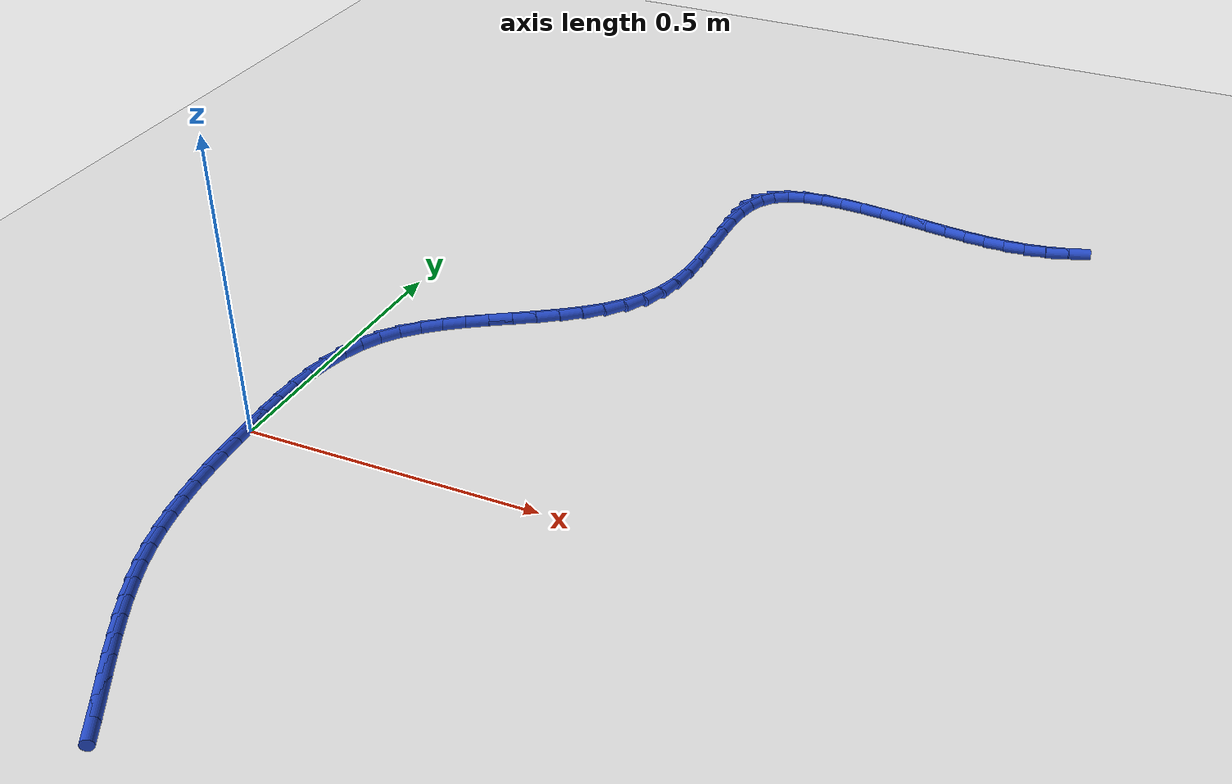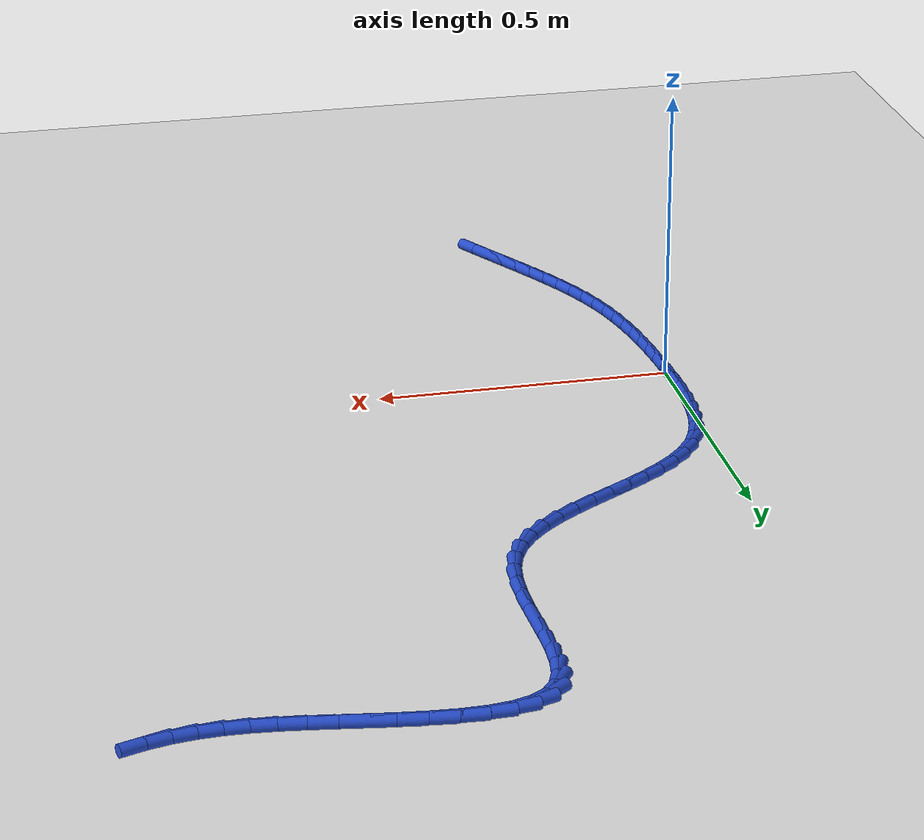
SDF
<sdf version="1.6">
 <world name="default">
  <model name="ground_plane">
   <static>1</static>
   <link name="link">
    <collision name="collision">
     <geometry><plane><normal>0 0 1</normal><size>100 100</size></plane></geometry>
     <surface><friction><ode><mu>100</mu><mu2>50</mu2></ode></friction></surface>
    </collision>
    <visual name="visual">
     <cast_shadows>0</cast_shadows>
     <geometry><plane><normal>0 0 1</normal><size>100 100</size></plane></geometry>
     <material>
      <script><uri>file://media/materials/scripts/gazebo.material</uri><name>Gazebo/WhiteGlow</name></script>
     </material>
    </visual>
   </link>
  </model>
  <model name="line">
   <link name="link_0">
    <pose>-1.1058862159352145e-17 6.245004513516506e-17 0.01 0 1.57 -1.5275356418402912</pose>
    <collision name="collision">
     <geometry><cylinder><radius>0.01</radius><length>0.08</length></cylinder></geometry>
    </collision>
    <visual name="visual">
     <material>
      <script><name>Gazebo/Blue</name><uri>file://media/materials/scripts/gazebo.material</uri></script>
     </material>
     <geometry><cylinder><radius>0.01</radius><length>0.08</length></cylinder></geometry>
    </visual>
   </link>
   <link name="link_1">
    <pose>-0.001732869755976206 0.04003146525691955 0.01 0 1.57 -1.5516477831592397</pose>
    <collision name="collision">
     <geometry><cylinder><radius>0.01</radius><length>0.08</length></cylinder></geometry>
    </collision>
    <visual name="visual">
     <material>
      <script><name>Gazebo/Blue</name><uri>file://media/materials/scripts/gazebo.material</uri></script>
     </material>
     <geometry><cylinder><radius>0.01</radius><length>0.08</length></cylinder></geometry>
    </visual>
   </link>
   <link name="link_2">
    <pose>-0.0025025522690324815 0.08022190757347675 0.01 0 1.57 1.5524722743471855</pose>
    <collision name="collision">
     <geometry><cylinder><radius>0.01</radius><length>0.08</length></cylinder></geometry>
    </collision>
    <visual name="visual">
     <material>
      <script><name>Gazebo/Blue</name><uri>file://media/materials/scripts/gazebo.material</uri></script>
     </material>
     <geometry><cylinder><radius>0.01</radius><length>0.08</length></cylinder></geometry>
    </visual>
   </link>
   <link name="link_3">
    <pose>-0.001771156139702708 0.12013198036291048 0.01 0 1.57 1.500223726393946</pose>
    <collision name="collision">
     <geometry><cylinder><radius>0.01</radius><length>0.08</length></cylinder></geometry>
    </collision>
    <visual name="visual">
     <material>
      <script><name>Gazebo/Blue</name><uri>file://media/materials/scripts/gazebo.material</uri></script>
     </material>
     <geometry><cylinder><radius>0.01</radius><length>0.08</length></cylinder></geometry>
    </visual>
   </link>
   <link name="link_4">
    <pose>0.0009992100314792467 0.1593223370384596 0.01 0 1.57 1.43111125408944</pose>
    <collision name="collision">
     <geometry><cylinder><radius>0.01</radius><length>0.08</length></cylinder></geometry>
    </collision>
    <visual name="visual">
     <material>
      <script><name>Gazebo/Blue</name><uri>file://media/materials/scripts/gazebo.material</uri></script>
     </material>
     <geometry><cylinder><radius>0.01</radius><length>0.08</length></cylinder></geometry>
    </visual>
   </link>
   <link name="link_5">
    <pose>0.006346437643979517 0.19735363101336284 0.01 0 1.57 1.3425805001648072</pose>
    <collision name="collision">
     <geometry><cylinder><radius>0.01</radius><length>0.08</length></cylinder></geometry>
    </collision>
    <visual name="visual">
     <material>
      <script><name>Gazebo/Blue</name><uri>file://media/materials/scripts/gazebo.material</uri></script>
     </material>
     <geometry><cylinder><radius>0.01</radius><length>0.08</length></cylinder></geometry>
    </visual>
   </link>
   <link name="link_6">
    <pose>0.014808418097264221 0.23378651570085904 0.01 0 1.57 1.232145863026751</pose>
    <collision name="collision">
     <geometry><cylinder><radius>0.01</radius><length>0.08</length></cylinder></geometry>
    </collision>
    <visual name="visual">
     <material>
      <script><name>Gazebo/Blue</name><uri>file://media/materials/scripts/gazebo.material</uri></script>
     </material>
     <geometry><cylinder><radius>0.01</radius><length>0.08</length></cylinder></geometry>
    </visual>
   </link>
   <link name="link_7">
    <pose>0.026923042790799514 0.2681816445141871 0.01 0 1.57 1.098510501969893</pose>
    <collision name="collision">
     <geometry><cylinder><radius>0.01</radius><length>0.08</length></cylinder></geometry>
    </collision>
    <visual name="visual">
     <material>
      <script><name>Gazebo/Blue</name><uri>file://media/materials/scripts/gazebo.material</uri></script>
     </material>
     <geometry><cylinder><radius>0.01</radius><length>0.08</length></cylinder></geometry>
    </visual>
   </link>
   <link name="link_8">
    <pose>0.0432282031240515 0.30009967086658573 0.01 0 1.57 0.9460700117547107</pose>
    <collision name="collision">
     <geometry><cylinder><radius>0.01</radius><length>0.08</length></cylinder></geometry>
    </collision>
    <visual name="visual">
     <material>
      <script><name>Gazebo/Blue</name><uri>file://media/materials/scripts/gazebo.material</uri></script>
     </material>
     <geometry><cylinder><radius>0.01</radius><length>0.08</length></cylinder></geometry>
    </visual>
   </link>
   <link name="link_9">
    <pose>0.06418155043998908 0.3291584232177059 0.01 0 1.57 0.8078296274266489</pose>
    <collision name="collision">
     <geometry><cylinder><radius>0.01</radius><length>0.08</length></cylinder></geometry>
    </collision>
    <visual name="visual">
     <material>
      <script><name>Gazebo/Blue</name><uri>file://media/materials/scripts/gazebo.material</uri></script>
     </material>
     <geometry><cylinder><radius>0.01</radius><length>0.08</length></cylinder></geometry>
    </visual>
   </link>
   <link name="link_10">
    <pose>0.08942296959469796 0.3555584294778584 0.01 0 1.57 0.7023490302393617</pose>
    <collision name="collision">
     <geometry><cylinder><radius>0.01</radius><length>0.08</length></cylinder></geometry>
    </collision>
    <visual name="visual">
     <material>
      <script><name>Gazebo/Blue</name><uri>file://media/materials/scripts/gazebo.material</uri></script>
     </material>
     <geometry><cylinder><radius>0.01</radius><length>0.08</length></cylinder></geometry>
    </visual>
   </link>
   <link name="link_11">
    <pose>0.11811468813111066 0.3798405722410467 0.01 0 1.57 0.627689161497716</pose>
    <collision name="collision">
     <geometry><cylinder><radius>0.01</radius><length>0.08</length></cylinder></geometry>
    </collision>
    <visual name="visual">
     <material>
      <script><name>Gazebo/Blue</name><uri>file://media/materials/scripts/gazebo.material</uri></script>
     </material>
     <geometry><cylinder><radius>0.01</radius><length>0.08</length></cylinder></geometry>
    </visual>
   </link>
   <link name="link_12">
    <pose>0.14941294272033548 0.40255000289655707 0.01 0 1.57 0.5804512296174468</pose>
    <collision name="collision">
     <geometry><cylinder><radius>0.01</radius><length>0.08</length></cylinder></geometry>
    </collision>
    <visual name="visual">
     <material>
      <script><name>Gazebo/Blue</name><uri>file://media/materials/scripts/gazebo.material</uri></script>
     </material>
     <geometry><cylinder><radius>0.01</radius><length>0.08</length></cylinder></geometry>
    </visual>
   </link>
   <link name="link_13">
    <pose>0.1824739700334807 0.4242318728336751 0.01 0 1.57 0.5577934172182518</pose>
    <collision name="collision">
     <geometry><cylinder><radius>0.01</radius><length>0.08</length></cylinder></geometry>
    </collision>
    <visual name="visual">
     <material>
      <script><name>Gazebo/Blue</name><uri>file://media/materials/scripts/gazebo.material</uri></script>
     </material>
     <geometry><cylinder><radius>0.01</radius><length>0.08</length></cylinder></geometry>
    </visual>
   </link>
   <link name="link_14">
    <pose>0.21645400674165438 0.4454313334416864 0.01 0 1.57 0.5581272599864323</pose>
    <collision name="collision">
     <geometry><cylinder><radius>0.01</radius><length>0.08</length></cylinder></geometry>
    </collision>
    <visual name="visual">
     <material>
      <script><name>Gazebo/Blue</name><uri>file://media/materials/scripts/gazebo.material</uri></script>
     </material>
     <geometry><cylinder><radius>0.01</radius><length>0.08</length></cylinder></geometry>
    </visual>
   </link>
   <link name="link_15">
    <pose>0.25050928951596463 0.46669353610987685 0.01 0 1.57 0.5812949089435681</pose>
    <collision name="collision">
     <geometry><cylinder><radius>0.01</radius><length>0.08</length></cylinder></geometry>
    </collision>
    <visual name="visual">
     <material>
      <script><name>Gazebo/Blue</name><uri>file://media/materials/scripts/gazebo.material</uri></script>
     </material>
     <geometry><cylinder><radius>0.01</radius><length>0.08</length></cylinder></geometry>
    </visual>
   </link>
   <link name="link_16">
    <pose>0.28379605502752003 0.48856363222753263 0.01 0 1.57 0.6285309322067728</pose>
    <collision name="collision">
     <geometry><cylinder><radius>0.01</radius><length>0.08</length></cylinder></geometry>
    </collision>
    <visual name="visual">
     <material>
      <script><name>Gazebo/Blue</name><uri>file://media/materials/scripts/gazebo.material</uri></script>
     </material>
     <geometry><cylinder><radius>0.01</radius><length>0.08</length></cylinder></geometry>
    </visual>
   </link>
   <link name="link_17">
    <pose>0.31547053994742863 0.511586773183939 0.01 0 1.57 0.7022178572623757</pose>
    <collision name="collision">
     <geometry><cylinder><radius>0.01</radius><length>0.08</length></cylinder></geometry>
    </collision>
    <visual name="visual">
     <material>
      <script><name>Gazebo/Blue</name><uri>file://media/materials/scripts/gazebo.material</uri></script>
     </material>
     <geometry><cylinder><radius>0.01</radius><length>0.08</length></cylinder></geometry>
    </visual>
   </link>
   <link name="link_18">
    <pose>0.34468898094679856 0.5363081103683821 0.01 0 1.57 0.8051759437182795</pose>
    <collision name="collision">
     <geometry><cylinder><radius>0.01</radius><length>0.08</length></cylinder></geometry>
    </collision>
    <visual name="visual">
     <material>
      <script><name>Gazebo/Blue</name><uri>file://media/materials/scripts/gazebo.material</uri></script>
     </material>
     <geometry><cylinder><radius>0.01</radius><length>0.08</length></cylinder></geometry>
    </visual>
   </link>
   <link name="link_19">
    <pose>0.3706076146967381 0.5632727951701477 0.01 0 1.57 0.9390084885521963</pose>
    <collision name="collision">
     <geometry><cylinder><radius>0.01</radius><length>0.08</length></cylinder></geometry>
    </collision>
    <visual name="visual">
     <material>
      <script><name>Gazebo/Blue</name><uri>file://media/materials/scripts/gazebo.material</uri></script>
     </material>
     <geometry><cylinder><radius>0.01</radius><length>0.08</length></cylinder></geometry>
    </visual>
   </link>
   <link name="link_20">
    <pose>0.39238267786835557 0.5930259789785216 0.01 0 1.57 1.1012590065751653</pose>
    <collision name="collision">
     <geometry><cylinder><radius>0.01</radius><length>0.08</length></cylinder></geometry>
    </collision>
    <visual name="visual">
     <material>
      <script><name>Gazebo/Blue</name><uri>file://media/materials/scripts/gazebo.material</uri></script>
     </material>
     <geometry><cylinder><radius>0.01</radius><length>0.08</length></cylinder></geometry>
    </visual>
   </link>
   <link name="link_21">
    <pose>0.409170407132759 0.6261128131827894 0.01 0 1.57 1.2771496763540042</pose>
    <collision name="collision">
     <geometry><cylinder><radius>0.01</radius><length>0.08</length></cylinder></geometry>
    </collision>
    <visual name="visual">
     <material>
      <script><name>Gazebo/Blue</name><uri>file://media/materials/scripts/gazebo.material</uri></script>
     </material>
     <geometry><cylinder><radius>0.01</radius><length>0.08</length></cylinder></geometry>
    </visual>
   </link>
   <link name="link_22">
    <pose>0.42030753806117166 0.6629433485379617 0.01 0 1.57 1.418424269235094</pose>
    <collision name="collision">
     <geometry><cylinder><radius>0.01</radius><length>0.08</length></cylinder></geometry>
    </collision>
    <visual name="visual">
     <material>
      <script><name>Gazebo/Blue</name><uri>file://media/materials/scripts/gazebo.material</uri></script>
     </material>
     <geometry><cylinder><radius>0.01</radius><length>0.08</length></cylinder></geometry>
    </visual>
   </link>
   <link name="link_23">
    <pose>0.4264495999379652 0.7029405391075337 0.01 0 1.57 1.5142072374921347</pose>
    <collision name="collision">
     <geometry><cylinder><radius>0.01</radius><length>0.08</length></cylinder></geometry>
    </collision>
    <visual name="visual">
     <material>
      <script><name>Gazebo/Blue</name><uri>file://media/materials/scripts/gazebo.material</uri></script>
     </material>
     <geometry><cylinder><radius>0.01</radius><length>0.08</length></cylinder></geometry>
    </visual>
   </link>
   <link name="link_24">
    <pose>0.4288373111412763 0.7450893339716551 0.01 0 1.57 -1.567948016073289</pose>
    <collision name="collision">
     <geometry><cylinder><radius>0.01</radius><length>0.08</length></cylinder></geometry>
    </collision>
    <visual name="visual">
     <material>
      <script><name>Gazebo/Blue</name><uri>file://media/materials/scripts/gazebo.material</uri></script>
     </material>
     <geometry><cylinder><radius>0.01</radius><length>0.08</length></cylinder></geometry>
    </visual>
   </link>
   <link name="link_25">
    <pose>0.42871402630668165 0.7883727090125657 0.01 0 1.57 -1.5387589881703392</pose>
    <collision name="collision">
     <geometry><cylinder><radius>0.01</radius><length>0.08</length></cylinder></geometry>
    </collision>
    <visual name="visual">
     <material>
      <script><name>Gazebo/Blue</name><uri>file://media/materials/scripts/gazebo.material</uri></script>
     </material>
     <geometry><cylinder><radius>0.01</radius><length>0.08</length></cylinder></geometry>
    </visual>
   </link>
   <link name="link_26">
    <pose>0.4273231000697584 0.831773640112506 0.01 0 1.57 -1.5375106418253857</pose>
    <collision name="collision">
     <geometry><cylinder><radius>0.01</radius><length>0.08</length></cylinder></geometry>
    </collision>
    <visual name="visual">
     <material>
      <script><name>Gazebo/Blue</name><uri>file://media/materials/scripts/gazebo.material</uri></script>
     </material>
     <geometry><cylinder><radius>0.01</radius><length>0.08</length></cylinder></geometry>
    </visual>
   </link>
   <link name="link_27">
    <pose>0.4259078870660832 0.8742751031537159 0.01 0 1.57 -1.5659634144249912</pose>
    <collision name="collision">
     <geometry><cylinder><radius>0.01</radius><length>0.08</length></cylinder></geometry>
    </collision>
    <visual name="visual">
     <material>
      <script><name>Gazebo/Blue</name><uri>file://media/materials/scripts/gazebo.material</uri></script>
     </material>
     <geometry><cylinder><radius>0.01</radius><length>0.08</length></cylinder></geometry>
    </visual>
   </link>
   <link name="link_28">
    <pose>0.42571174193123307 0.9148600740184358 0.01 0 1.57 1.5106778942452932</pose>
    <collision name="collision">
     <geometry><cylinder><radius>0.01</radius><length>0.08</length></cylinder></geometry>
    </collision>
    <visual name="visual">
     <material>
      <script><name>Gazebo/Blue</name><uri>file://media/materials/scripts/gazebo.material</uri></script>
     </material>
     <geometry><cylinder><radius>0.01</radius><length>0.08</length></cylinder></geometry>
    </visual>
   </link>
   <link name="link_29">
    <pose>0.42797801930078483 0.9525115285889053 0.01 0 1.57 1.3954095687814998</pose>
    <collision name="collision">
     <geometry><cylinder><radius>0.01</radius><length>0.08</length></cylinder></geometry>
    </collision>
    <visual name="visual">
     <material>
      <script><name>Gazebo/Blue</name><uri>file://media/materials/scripts/gazebo.material</uri></script>
     </material>
     <geometry><cylinder><radius>0.01</radius><length>0.08</length></cylinder></geometry>
    </visual>
   </link>
   <link name="link_30">
    <pose>0.43395007381031536 0.9862124427473652 0.01 0 1.57 1.2075728823514587</pose>
    <collision name="collision">
     <geometry><cylinder><radius>0.01</radius><length>0.08</length></cylinder></geometry>
    </collision>
    <visual name="visual">
     <material>
      <script><name>Gazebo/Blue</name><uri>file://media/materials/scripts/gazebo.material</uri></script>
     </material>
     <geometry><cylinder><radius>0.01</radius><length>0.08</length></cylinder></geometry>
    </visual>
   </link>
   <link name="link_31">
    <pose>0.4448712600954017 1.0149457923760554 0.01 0 1.57 0.9258310234081023</pose>
    <collision name="collision">
     <geometry><cylinder><radius>0.01</radius><length>0.08</length></cylinder></geometry>
    </collision>
    <visual name="visual">
     <material>
      <script><name>Gazebo/Blue</name><uri>file://media/materials/scripts/gazebo.material</uri></script>
     </material>
     <geometry><cylinder><radius>0.01</radius><length>0.08</length></cylinder></geometry>
    </visual>
   </link>
   <link name="link_32">
    <pose>0.46198493279162045 1.0376945533572157 0.01 0 1.57 0.586469996426578</pose>
    <collision name="collision">
     <geometry><cylinder><radius>0.01</radius><length>0.08</length></cylinder></geometry>
    </collision>
    <visual name="visual">
     <material>
      <script><name>Gazebo/Blue</name><uri>file://media/materials/scripts/gazebo.material</uri></script>
     </material>
     <geometry><cylinder><radius>0.01</radius><length>0.08</length></cylinder></geometry>
    </visual>
   </link>
   <link name="link_33">
    <pose>0.48614955441017244 1.0537508608491075 0.01 0 1.57 0.31651467061197514</pose>
    <collision name="collision">
     <geometry><cylinder><radius>0.01</radius><length>0.08</length></cylinder></geometry>
    </collision>
    <visual name="visual">
     <material>
      <script><name>Gazebo/Blue</name><uri>file://media/materials/scripts/gazebo.material</uri></script>
     </material>
     <geometry><cylinder><radius>0.01</radius><length>0.08</length></cylinder></geometry>
    </visual>
   </link>
   <link name="link_34">
    <pose>0.5165883333295642 1.0637203452772463 0.01 0 1.57 0.1354139370446253</pose>
    <collision name="collision">
     <geometry><cylinder><radius>0.01</radius><length>0.08</length></cylinder></geometry>
    </collision>
    <visual name="visual">
     <material>
      <script><name>Gazebo/Blue</name><uri>file://media/materials/scripts/gazebo.material</uri></script>
     </material>
     <geometry><cylinder><radius>0.01</radius><length>0.08</length></cylinder></geometry>
    </visual>
   </link>
   <link name="link_35">
    <pose>0.5520902747579276 1.0685574047589195 0.01 0 1.57 0.016744726085475014</pose>
    <collision name="collision">
     <geometry><cylinder><radius>0.01</radius><length>0.08</length></cylinder></geometry>
    </collision>
    <visual name="visual">
     <material>
      <script><name>Gazebo/Blue</name><uri>file://media/materials/scripts/gazebo.material</uri></script>
     </material>
     <geometry><cylinder><radius>0.01</radius><length>0.08</length></cylinder></geometry>
    </visual>
   </link>
   <link name="link_36">
    <pose>0.5914443805845806 1.0692164400772033 0.01 0 1.57 -0.06099274885537861</pose>
    <collision name="collision">
     <geometry><cylinder><radius>0.01</radius><length>0.08</length></cylinder></geometry>
    </collision>
    <visual name="visual">
     <material>
      <script><name>Gazebo/Blue</name><uri>file://media/materials/scripts/gazebo.material</uri></script>
     </material>
     <geometry><cylinder><radius>0.01</radius><length>0.08</length></cylinder></geometry>
    </visual>
   </link>
   <link name="link_37">
    <pose>0.6334396526988426 1.066651852015175 0.01 0 1.57 -0.11085652130134405</pose>
    <collision name="collision">
     <geometry><cylinder><radius>0.01</radius><length>0.08</length></cylinder></geometry>
    </collision>
    <visual name="visual">
     <material>
      <script><name>Gazebo/Blue</name><uri>file://media/materials/scripts/gazebo.material</uri></script>
     </material>
     <geometry><cylinder><radius>0.01</radius><length>0.08</length></cylinder></geometry>
    </visual>
   </link>
   <link name="link_38">
    <pose>0.6768650929900315 1.0618180413559113 0.01 0 1.57 -0.13995846597477396</pose>
    <collision name="collision">
     <geometry><cylinder><radius>0.01</radius><length>0.08</length></cylinder></geometry>
    </collision>
    <visual name="visual">
     <material>
      <script><name>Gazebo/Blue</name><uri>file://media/materials/scripts/gazebo.material</uri></script>
     </material>
     <geometry><cylinder><radius>0.01</radius><length>0.08</length></cylinder></geometry>
    </visual>
   </link>
   <link name="link_39">
    <pose>0.7205097033474658 1.0556694088824887 0.01 0 1.57 -0.15143723430762923</pose>
    <collision name="collision">
     <geometry><cylinder><radius>0.01</radius><length>0.08</length></cylinder></geometry>
    </collision>
    <visual name="visual">
     <material>
      <script><name>Gazebo/Blue</name><uri>file://media/materials/scripts/gazebo.material</uri></script>
     </material>
     <geometry><cylinder><radius>0.01</radius><length>0.08</length></cylinder></geometry>
    </visual>
   </link>
   <link name="link_40">
    <pose>0.763162485781373 1.049160355347872 0.01 0 1.57 -0.14589711013485016</pose>
    <collision name="collision">
     <geometry><cylinder><radius>0.01</radius><length>0.08</length></cylinder></geometry>
    </collision>
    <visual name="visual">
     <material>
      <script><name>Gazebo/Blue</name><uri>file://media/materials/scripts/gazebo.material</uri></script>
     </material>
     <geometry><cylinder><radius>0.01</radius><length>0.08</length></cylinder></geometry>
    </visual>
   </link>
   <link name="link_41">
    <pose>0.803893425054528 1.0431753027537694 0.01 0 1.57 -0.12379978470564273</pose>
    <collision name="collision">
     <geometry><cylinder><radius>0.01</radius><length>0.08</length></cylinder></geometry>
    </collision>
    <visual name="visual">
     <material>
      <script><name>Gazebo/Blue</name><uri>file://media/materials/scripts/gazebo.material</uri></script>
     </material>
     <geometry><cylinder><radius>0.01</radius><length>0.08</length></cylinder></geometry>
    </visual>
   </link>
   <link name="link_42">
    <pose>0.8428710797199511 1.0383250733121934 0.01 0 1.57 -0.0840111638354742</pose>
    <collision name="collision">
     <geometry><cylinder><radius>0.01</radius><length>0.08</length></cylinder></geometry>
    </collision>
    <visual name="visual">
     <material>
      <script><name>Gazebo/Blue</name><uri>file://media/materials/scripts/gazebo.material</uri></script>
     </material>
     <geometry><cylinder><radius>0.01</radius><length>0.08</length></cylinder></geometry>
    </visual>
   </link>
   <link name="link_43">
    <pose>0.8805324548568401 1.0351536326309319 0.01 0 1.57 -0.02578634755228146</pose>
    <collision name="collision">
     <geometry><cylinder><radius>0.01</radius><length>0.08</length></cylinder></geometry>
    </collision>
    <visual name="visual">
     <material>
      <script><name>Gazebo/Blue</name><uri>file://media/materials/scripts/gazebo.material</uri></script>
     </material>
     <geometry><cylinder><radius>0.01</radius><length>0.08</length></cylinder></geometry>
    </visual>
   </link>
   <link name="link_44">
    <pose>0.9173145555443931 1.0342049463177723 0.01 0 1.57 0.04998700060507502</pose>
    <collision name="collision">
     <geometry><cylinder><radius>0.01</radius><length>0.08</length></cylinder></geometry>
    </collision>
    <visual name="visual">
     <material>
      <script><name>Gazebo/Blue</name><uri>file://media/materials/scripts/gazebo.material</uri></script>
     </material>
     <geometry><cylinder><radius>0.01</radius><length>0.08</length></cylinder></geometry>
    </visual>
   </link>
   <link name="link_45">
    <pose>0.9536543868618078 1.0360229799805032 0.01 0 1.57 0.14022622272405869</pose>
    <collision name="collision">
     <geometry><cylinder><radius>0.01</radius><length>0.08</length></cylinder></geometry>
    </collision>
    <visual name="visual">
     <material>
      <script><name>Gazebo/Blue</name><uri>file://media/materials/scripts/gazebo.material</uri></script>
     </material>
     <geometry><cylinder><radius>0.01</radius><length>0.08</length></cylinder></geometry>
    </visual>
   </link>
   <link name="link_46">
    <pose>0.9899889538882825 1.041151699226912 0.01 0 1.57 0.23918329345192557</pose>
    <collision name="collision">
     <geometry><cylinder><radius>0.01</radius><length>0.08</length></cylinder></geometry>
    </collision>
    <visual name="visual">
     <material>
      <script><name>Gazebo/Blue</name><uri>file://media/materials/scripts/gazebo.material</uri></script>
     </material>
     <geometry><cylinder><radius>0.01</radius><length>0.08</length></cylinder></geometry>
    </visual>
   </link>
   <link name="link_47">
    <pose>1.0267462085621666 1.0501150020726417 0.01 0 1.57 0.3278573880570288</pose>
    <collision name="collision">
     <geometry><cylinder><radius>0.01</radius><length>0.08</length></cylinder></geometry>
    </collision>
    <visual name="visual">
     <material>
      <script><name>Gazebo/Blue</name><uri>file://media/materials/scripts/gazebo.material</uri></script>
     </material>
     <geometry><cylinder><radius>0.01</radius><length>0.08</length></cylinder></geometry>
    </visual>
   </link>
   <link name="link_183">
    <pose>0.19895164340087795 -0.6017955936749971 0.01 0 1.57 -1.0514120728376763</pose>
    <collision name="collision">
     <geometry><cylinder><radius>0.01</radius><length>0.08</length></cylinder></geometry>
    </collision>
    <visual name="visual">
     <material>
      <script><name>Gazebo/Blue</name><uri>file://media/materials/scripts/gazebo.material</uri></script>
     </material>
     <geometry><cylinder><radius>0.01</radius><length>0.08</length></cylinder></geometry>
    </visual>
   </link>
   <link name="link_184">
    <pose>0.17937845659561033 -0.5675614448122156 0.01 0 1.57 -1.04674311503663</pose>
    <collision name="collision">
     <geometry><cylinder><radius>0.01</radius><length>0.08</length></cylinder></geometry>
    </collision>
    <visual name="visual">
     <material>
      <script><name>Gazebo/Blue</name><uri>file://media/materials/scripts/gazebo.material</uri></script>
     </material>
     <geometry><cylinder><radius>0.01</radius><length>0.08</length></cylinder></geometry>
    </visual>
   </link>
   <link name="link_185">
    <pose>0.15987002226991762 -0.5338072788484512 0.01 0 1.57 -1.049159914954589</pose>
    <collision name="collision">
     <geometry><cylinder><radius>0.01</radius><length>0.08</length></cylinder></geometry>
    </collision>
    <visual name="visual">
     <material>
      <script><name>Gazebo/Blue</name><uri>file://media/materials/scripts/gazebo.material</uri></script>
     </material>
     <geometry><cylinder><radius>0.01</radius><length>0.08</length></cylinder></geometry>
    </visual>
   </link>
   <link name="link_186">
    <pose>0.140665122705736 -0.5003921547317777 0.01 0 1.57 -1.059137121812499</pose>
    <collision name="collision">
     <geometry><cylinder><radius>0.01</radius><length>0.08</length></cylinder></geometry>
    </collision>
    <visual name="visual">
     <material>
      <script><name>Gazebo/Blue</name><uri>file://media/materials/scripts/gazebo.material</uri></script>
     </material>
     <geometry><cylinder><radius>0.01</radius><length>0.08</length></cylinder></geometry>
    </visual>
   </link>
   <link name="link_187">
    <pose>0.12200848250520768 -0.46716803765245357 0.01 0 1.57 -1.0769277164585762</pose>
    <collision name="collision">
     <geometry><cylinder><radius>0.01</radius><length>0.08</length></cylinder></geometry>
    </collision>
    <visual name="visual">
     <material>
      <script><name>Gazebo/Blue</name><uri>file://media/materials/scripts/gazebo.material</uri></script>
     </material>
     <geometry><cylinder><radius>0.01</radius><length>0.08</length></cylinder></geometry>
    </visual>
   </link>
   <link name="link_188">
    <pose>0.10414482627047478 -0.43398689280073777 0.01 0 1.57 -1.1027639128052278</pose>
    <collision name="collision">
     <geometry><cylinder><radius>0.01</radius><length>0.08</length></cylinder></geometry>
    </collision>
    <visual name="visual">
     <material>
      <script><name>Gazebo/Blue</name><uri>file://media/materials/scripts/gazebo.material</uri></script>
     </material>
     <geometry><cylinder><radius>0.01</radius><length>0.08</length></cylinder></geometry>
    </visual>
   </link>
   <link name="link_189">
    <pose>0.08731887860367937 -0.4007006853668888 0.01 0 1.57 -1.1368206263294558</pose>
    <collision name="collision">
     <geometry><cylinder><radius>0.01</radius><length>0.08</length></cylinder></geometry>
    </collision>
    <visual name="visual">
     <material>
      <script><name>Gazebo/Blue</name><uri>file://media/materials/scripts/gazebo.material</uri></script>
     </material>
     <geometry><cylinder><radius>0.01</radius><length>0.08</length></cylinder></geometry>
    </visual>
   </link>
   <link name="link_190">
    <pose>0.07177536410696357 -0.3671613805411651 0.01 0 1.57 -1.1791598016927363</pose>
    <collision name="collision">
     <geometry><cylinder><radius>0.01</radius><length>0.08</length></cylinder></geometry>
    </collision>
    <visual name="visual">
     <material>
      <script><name>Gazebo/Blue</name><uri>file://media/materials/scripts/gazebo.material</uri></script>
     </material>
     <geometry><cylinder><radius>0.01</radius><length>0.08</length></cylinder></geometry>
    </visual>
   </link>
   <link name="link_191">
    <pose>0.05775900738246946 -0.33322094351382553 0.01 0 1.57 -1.2296031137972432</pose>
    <collision name="collision">
     <geometry><cylinder><radius>0.01</radius><length>0.08</length></cylinder></geometry>
    </collision>
    <visual name="visual">
     <material>
      <script><name>Gazebo/Blue</name><uri>file://media/materials/scripts/gazebo.material</uri></script>
     </material>
     <geometry><cylinder><radius>0.01</radius><length>0.08</length></cylinder></geometry>
    </visual>
   </link>
   <link name="link_192">
    <pose>0.0455126781143881 -0.2987320101085232 0.01 0 1.57 -1.283472541546737</pose>
    <collision name="collision">
     <geometry><cylinder><radius>0.01</radius><length>0.08</length></cylinder></geometry>
    </collision>
    <visual name="visual">
     <material>
      <script><name>Gazebo/Blue</name><uri>file://media/materials/scripts/gazebo.material</uri></script>
     </material>
     <geometry><cylinder><radius>0.01</radius><length>0.08</length></cylinder></geometry>
    </visual>
   </link>
   <link name="link_193">
    <pose>0.035131351798762714 -0.26360068632058853 0.01 0 1.57 -1.3329191495415262</pose>
    <collision name="collision">
     <geometry><cylinder><radius>0.01</radius><length>0.08</length></cylinder></geometry>
    </collision>
    <visual name="visual">
     <material>
      <script><name>Gazebo/Blue</name><uri>file://media/materials/scripts/gazebo.material</uri></script>
     </material>
     <geometry><cylinder><radius>0.01</radius><length>0.08</length></cylinder></geometry>
    </visual>
   </link>
   <link name="link_194">
    <pose>0.026456803766286563 -0.22782462100096124 0.01 0 1.57 -1.37688863140158</pose>
    <collision name="collision">
     <geometry><cylinder><radius>0.01</radius><length>0.08</length></cylinder></geometry>
    </collision>
    <visual name="visual">
     <material>
      <script><name>Gazebo/Blue</name><uri>file://media/materials/scripts/gazebo.material</uri></script>
     </material>
     <geometry><cylinder><radius>0.01</radius><length>0.08</length></cylinder></geometry>
    </visual>
   </link>
   <link name="link_195">
    <pose>0.019305965097003146 -0.19141044527611165 0.01 0 1.57 -1.415224812314856</pose>
    <collision name="collision">
     <geometry><cylinder><radius>0.01</radius><length>0.08</length></cylinder></geometry>
    </collision>
    <visual name="visual">
     <material>
      <script><name>Gazebo/Blue</name><uri>file://media/materials/scripts/gazebo.material</uri></script>
     </material>
     <geometry><cylinder><radius>0.01</radius><length>0.08</length></cylinder></geometry>
    </visual>
   </link>
   <link name="link_196">
    <pose>0.013495766870955982 -0.15436479027251038 0.01 0 1.57 -1.4479101713051699</pose>
    <collision name="collision">
     <geometry><cylinder><radius>0.01</radius><length>0.08</length></cylinder></geometry>
    </collision>
    <visual name="visual">
     <material>
      <script><name>Gazebo/Blue</name><uri>file://media/materials/scripts/gazebo.material</uri></script>
     </material>
     <geometry><cylinder><radius>0.01</radius><length>0.08</length></cylinder></geometry>
    </visual>
   </link>
   <link name="link_197">
    <pose>0.008843140168188579 -0.11669428711662808 0.01 0 1.57 -1.4750273296649636</pose>
    <collision name="collision">
     <geometry><cylinder><radius>0.01</radius><length>0.08</length></cylinder></geometry>
    </collision>
    <visual name="visual">
     <material>
      <script><name>Gazebo/Blue</name><uri>file://media/materials/scripts/gazebo.material</uri></script>
     </material>
     <geometry><cylinder><radius>0.01</radius><length>0.08</length></cylinder></geometry>
    </visual>
   </link>
   <link name="link_198">
    <pose>0.005165016068744439 -0.07840556693493518 0.01 0 1.57 -1.496724696101311</pose>
    <collision name="collision">
     <geometry><cylinder><radius>0.01</radius><length>0.08</length></cylinder></geometry>
    </collision>
    <visual name="visual">
     <material>
      <script><name>Gazebo/Blue</name><uri>file://media/materials/scripts/gazebo.material</uri></script>
     </material>
     <geometry><cylinder><radius>0.01</radius><length>0.08</length></cylinder></geometry>
    </visual>
   </link>
   <link name="link_199">
    <pose>0.002278325652667072 -0.03950526085390228 0.01 0 1.57 -1.5131886884326742</pose>
    <collision name="collision">
     <geometry><cylinder><radius>0.01</radius><length>0.08</length></cylinder></geometry>
    </collision>
    <visual name="visual">
     <material>
      <script><name>Gazebo/Blue</name><uri>file://media/materials/scripts/gazebo.material</uri></script>
     </material>
     <geometry><cylinder><radius>0.01</radius><length>0.08</length></cylinder></geometry>
    </visual>
   </link>
   <link name="link_200">
    <pose>-1.214306433183765e-17 5.551115123125783e-17 0.01 0 1.57 -1.5246230787470734</pose>
    <collision name="collision">
     <geometry><cylinder><radius>0.01</radius><length>0.08</length></cylinder></geometry>
    </collision>
    <visual name="visual">
     <material>
      <script><name>Gazebo/Blue</name><uri>file://media/materials/scripts/gazebo.material</uri></script>
     </material>
     <geometry><cylinder><radius>0.01</radius><length>0.08</length></cylinder></geometry>
    </visual>
   </link>
   <link name="link_201">
    <pose>-0.0018530298092133495 0.04010358450030221 0.01 0 1.57 -1.5246230787470731</pose>
    <collision name="collision">
     <geometry><cylinder><radius>0.01</radius><length>0.08</length></cylinder></geometry>
    </collision>
    <visual name="visual">
     <material>
      <script><name>Gazebo/Blue</name><uri>file://media/materials/scripts/gazebo.material</uri></script>
     </material>
     <geometry><cylinder><radius>0.01</radius><length>0.08</length></cylinder></geometry>
    </visual>
   </link>
  </model>
 </world>
</sdf>
